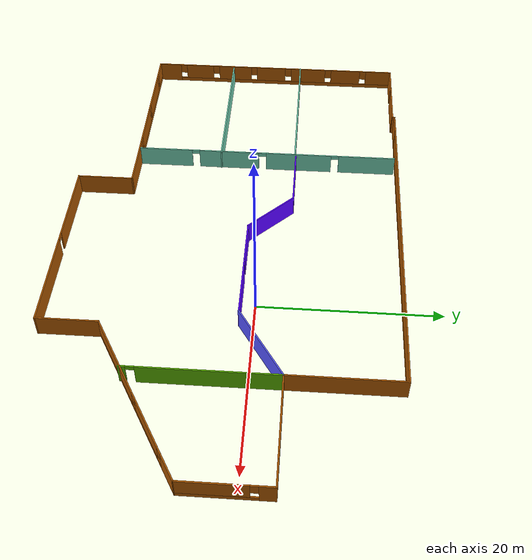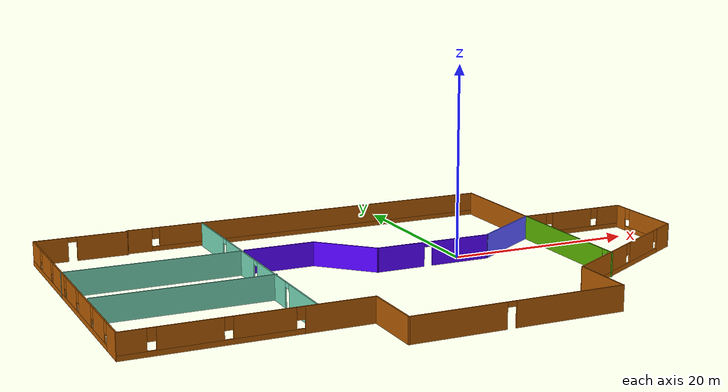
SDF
<?xml version='1.0'?>
<sdf version='1.6'>
  <model name='building'>
    <pose frame=''>-8.91477 -3.25787 0 0 -0 0</pose>
    <link name='Wall_0'>
      <pose frame=''>-1.08371 18.8526 0 0 -0 0</pose>
      <visual name='Wall_0_Visual_0'>
        <pose frame=''>-19.029 0 1.25 0 -0 0</pose>
        <geometry>
          <box>
            <size>2.69209 0.15 2.5</size>
          </box>
        </geometry>
        <material>
          <script>
            <uri>file://media/materials/scripts/gazebo.material</uri>
            <name>Gazebo/Grey</name>
          </script>
          <ambient>0.666667 0.333333 0 1</ambient>
        </material>
        <meta>
          <layer>0</layer>
        </meta>
      </visual>
      <collision name='Wall_0_Collision_0'>
        <geometry>
          <box>
            <size>2.69209 0.15 2.5</size>
          </box>
        </geometry>
        <pose frame=''>-19.029 0 1.25 0 -0 0</pose>
      </collision>
      <visual name='Wall_0_Visual_1'>
        <pose frame=''>1.34604 0 0.25 0 -0 0</pose>
        <geometry>
          <box>
            <size>38.0579 0.15 0.5</size>
          </box>
        </geometry>
        <material>
          <script>
            <uri>file://media/materials/scripts/gazebo.material</uri>
            <name>Gazebo/Grey</name>
          </script>
          <ambient>0.666667 0.333333 0 1</ambient>
        </material>
        <meta>
          <layer>0</layer>
        </meta>
      </visual>
      <collision name='Wall_0_Collision_1'>
        <geometry>
          <box>
            <size>38.0579 0.15 0.5</size>
          </box>
        </geometry>
        <pose frame=''>1.34604 0 0.25 0 -0 0</pose>
      </collision>
      <visual name='Wall_0_Visual_2'>
        <pose frame=''>1.74604 0 1.5 0 -0 0</pose>
        <geometry>
          <box>
            <size>37.2579 0.15 2</size>
          </box>
        </geometry>
        <material>
          <script>
            <uri>file://media/materials/scripts/gazebo.material</uri>
            <name>Gazebo/Grey</name>
          </script>
          <ambient>0.666667 0.333333 0 1</ambient>
        </material>
        <meta>
          <layer>0</layer>
        </meta>
      </visual>
      <collision name='Wall_0_Collision_2'>
        <geometry>
          <box>
            <size>37.2579 0.15 2</size>
          </box>
        </geometry>
        <pose frame=''>1.74604 0 1.5 0 -0 0</pose>
      </collision>
      <visual name='Wall_0_Visual_3'>
        <pose frame=''>-17.2829 0 1.9 0 -0 0</pose>
        <geometry>
          <box>
            <size>0.8 0.15 1.2</size>
          </box>
        </geometry>
        <material>
          <script>
            <uri>file://media/materials/scripts/gazebo.material</uri>
            <name>Gazebo/Grey</name>
          </script>
          <ambient>0.666667 0.333333 0 1</ambient>
        </material>
        <meta>
          <layer>0</layer>
        </meta>
      </visual>
      <collision name='Wall_0_Collision_3'>
        <geometry>
          <box>
            <size>0.8 0.15 1.2</size>
          </box>
        </geometry>
        <pose frame=''>-17.2829 0 1.9 0 -0 0</pose>
      </collision>
    </link>
    <link name='Wall_1'>
      <collision name='Wall_1_Collision'>
        <geometry>
          <box>
            <size>12.25 0.15 2.5</size>
          </box>
        </geometry>
        <pose frame=''>0 0 1.25 0 -0 0</pose>
      </collision>
      <visual name='Wall_1_Visual'>
        <pose frame=''>0 0 1.25 0 -0 0</pose>
        <geometry>
          <box>
            <size>12.25 0.15 2.5</size>
          </box>
        </geometry>
        <material>
          <script>
            <uri>file://media/materials/scripts/gazebo.material</uri>
            <name>Gazebo/Grey</name>
          </script>
          <ambient>0.666667 0.333333 0 1</ambient>
        </material>
        <meta>
          <layer>0</layer>
        </meta>
      </visual>
      <pose frame=''>19.2163 12.8026 0 0 0 -1.5708</pose>
    </link>
    <link name='Wall_12'>
      <pose frame=''>-26.2743 18.5776 0 0 -0 0</pose>
      <visual name='Wall_12_Visual_0'>
        <pose frame=''>-3.10766 0 1.25 0 -0 0</pose>
        <geometry>
          <box>
            <size>3.53467 0.15 2.5</size>
          </box>
        </geometry>
        <material>
          <script>
            <uri>file://media/materials/scripts/gazebo.material</uri>
            <name>Gazebo/Grey</name>
          </script>
          <ambient>0.666667 0.333333 0 1</ambient>
        </material>
        <meta>
          <layer>0</layer>
        </meta>
      </visual>
      <collision name='Wall_12_Collision_0'>
        <geometry>
          <box>
            <size>3.53467 0.15 2.5</size>
          </box>
        </geometry>
        <pose frame=''>-3.10766 0 1.25 0 -0 0</pose>
      </collision>
      <visual name='Wall_12_Visual_1'>
        <pose frame=''>2.21734 0 1.25 0 -0 0</pose>
        <geometry>
          <box>
            <size>5.31533 0.15 2.5</size>
          </box>
        </geometry>
        <material>
          <script>
            <uri>file://media/materials/scripts/gazebo.material</uri>
            <name>Gazebo/Grey</name>
          </script>
          <ambient>0.666667 0.333333 0 1</ambient>
        </material>
        <meta>
          <layer>0</layer>
        </meta>
      </visual>
      <collision name='Wall_12_Collision_1'>
        <geometry>
          <box>
            <size>5.31533 0.15 2.5</size>
          </box>
        </geometry>
        <pose frame=''>2.21734 0 1.25 0 -0 0</pose>
      </collision>
      <visual name='Wall_12_Visual_2'>
        <pose frame=''>-0.890327 0 2.25 0 -0 0</pose>
        <geometry>
          <box>
            <size>0.9 0.15 0.5</size>
          </box>
        </geometry>
        <material>
          <script>
            <uri>file://media/materials/scripts/gazebo.material</uri>
            <name>Gazebo/Grey</name>
          </script>
          <ambient>0.666667 0.333333 0 1</ambient>
        </material>
        <meta>
          <layer>0</layer>
        </meta>
      </visual>
      <collision name='Wall_12_Collision_2'>
        <geometry>
          <box>
            <size>0.9 0.15 0.5</size>
          </box>
        </geometry>
        <pose frame=''>-0.890327 0 2.25 0 -0 0</pose>
      </collision>
    </link>
    <link name='Wall_13'>
      <collision name='Wall_13_Collision'>
        <geometry>
          <box>
            <size>0.439541 0.15 2.5</size>
          </box>
        </geometry>
        <pose frame=''>0 0 1.25 0 -0 0</pose>
      </collision>
      <visual name='Wall_13_Visual'>
        <pose frame=''>0 0 1.25 0 -0 0</pose>
        <geometry>
          <box>
            <size>0.439541 0.15 2.5</size>
          </box>
        </geometry>
        <material>
          <script>
            <uri>file://media/materials/scripts/gazebo.material</uri>
            <name>Gazebo/Grey</name>
          </script>
          <ambient>0.666667 0.333333 0 1</ambient>
        </material>
        <meta>
          <layer>0</layer>
        </meta>
      </visual>
      <pose frame=''>-21.429 18.7151 0 0 -0 1.25253</pose>
    </link>
    <link name='Wall_15'>
      <pose frame=''>-13.3235 3.08844 0 0 0 -1.5708</pose>
      <visual name='Wall_15_Visual_0'>
        <pose frame=''>-12.1041 0 1.25 0 -0 0</pose>
        <geometry>
          <box>
            <size>6.79177 0.15 2.5</size>
          </box>
        </geometry>
        <material>
          <script>
            <uri>file://media/materials/scripts/gazebo.material</uri>
            <name>Gazebo/Grey</name>
          </script>
          <ambient>0.435294 0.796078 0.67451 1</ambient>
        </material>
        <meta>
          <layer>0</layer>
        </meta>
      </visual>
      <collision name='Wall_15_Collision_0'>
        <geometry>
          <box>
            <size>6.79177 0.15 2.5</size>
          </box>
        </geometry>
        <pose frame=''>-12.1041 0 1.25 0 -0 0</pose>
      </collision>
      <visual name='Wall_15_Visual_1'>
        <pose frame=''>-3.85922 0 1.25 0 -0 0</pose>
        <geometry>
          <box>
            <size>7.89802 0.15 2.5</size>
          </box>
        </geometry>
        <material>
          <script>
            <uri>file://media/materials/scripts/gazebo.material</uri>
            <name>Gazebo/Grey</name>
          </script>
          <ambient>0.435294 0.796078 0.67451 1</ambient>
        </material>
        <meta>
          <layer>0</layer>
        </meta>
      </visual>
      <collision name='Wall_15_Collision_1'>
        <geometry>
          <box>
            <size>7.89802 0.15 2.5</size>
          </box>
        </geometry>
        <pose frame=''>-3.85922 0 1.25 0 -0 0</pose>
      </collision>
      <visual name='Wall_15_Visual_2'>
        <pose frame=''>4.60962 0 1.25 0 -0 0</pose>
        <geometry>
          <box>
            <size>7.23966 0.15 2.5</size>
          </box>
        </geometry>
        <material>
          <script>
            <uri>file://media/materials/scripts/gazebo.material</uri>
            <name>Gazebo/Grey</name>
          </script>
          <ambient>0.435294 0.796078 0.67451 1</ambient>
        </material>
        <meta>
          <layer>0</layer>
        </meta>
      </visual>
      <collision name='Wall_15_Collision_2'>
        <geometry>
          <box>
            <size>7.23966 0.15 2.5</size>
          </box>
        </geometry>
        <pose frame=''>4.60962 0 1.25 0 -0 0</pose>
      </collision>
      <visual name='Wall_15_Visual_3'>
        <pose frame=''>12.3147 0 1.25 0 -0 0</pose>
        <geometry>
          <box>
            <size>6.37055 0.15 2.5</size>
          </box>
        </geometry>
        <material>
          <script>
            <uri>file://media/materials/scripts/gazebo.material</uri>
            <name>Gazebo/Grey</name>
          </script>
          <ambient>0.435294 0.796078 0.67451 1</ambient>
        </material>
        <meta>
          <layer>0</layer>
        </meta>
      </visual>
      <collision name='Wall_15_Collision_3'>
        <geometry>
          <box>
            <size>6.37055 0.15 2.5</size>
          </box>
        </geometry>
        <pose frame=''>12.3147 0 1.25 0 -0 0</pose>
      </collision>
      <visual name='Wall_15_Visual_4'>
        <pose frame=''>-8.25823 0 2.25 0 -0 0</pose>
        <geometry>
          <box>
            <size>0.9 0.15 0.5</size>
          </box>
        </geometry>
        <material>
          <script>
            <uri>file://media/materials/scripts/gazebo.material</uri>
            <name>Gazebo/Grey</name>
          </script>
          <ambient>0.435294 0.796078 0.67451 1</ambient>
        </material>
        <meta>
          <layer>0</layer>
        </meta>
      </visual>
      <collision name='Wall_15_Collision_4'>
        <geometry>
          <box>
            <size>0.9 0.15 0.5</size>
          </box>
        </geometry>
        <pose frame=''>-8.25823 0 2.25 0 -0 0</pose>
      </collision>
      <visual name='Wall_15_Visual_5'>
        <pose frame=''>0.539787 0 2.25 0 -0 0</pose>
        <geometry>
          <box>
            <size>0.9 0.15 0.5</size>
          </box>
        </geometry>
        <material>
          <script>
            <uri>file://media/materials/scripts/gazebo.material</uri>
            <name>Gazebo/Grey</name>
          </script>
          <ambient>0.435294 0.796078 0.67451 1</ambient>
        </material>
        <meta>
          <layer>0</layer>
        </meta>
      </visual>
      <collision name='Wall_15_Collision_5'>
        <geometry>
          <box>
            <size>0.9 0.15 0.5</size>
          </box>
        </geometry>
        <pose frame=''>0.539787 0 2.25 0 -0 0</pose>
      </collision>
      <visual name='Wall_15_Visual_6'>
        <pose frame=''>8.67945 0 2.25 0 -0 0</pose>
        <geometry>
          <box>
            <size>0.9 0.15 0.5</size>
          </box>
        </geometry>
        <material>
          <script>
            <uri>file://media/materials/scripts/gazebo.material</uri>
            <name>Gazebo/Grey</name>
          </script>
          <ambient>0.435294 0.796078 0.67451 1</ambient>
        </material>
        <meta>
          <layer>0</layer>
        </meta>
      </visual>
      <collision name='Wall_15_Collision_6'>
        <geometry>
          <box>
            <size>0.9 0.15 0.5</size>
          </box>
        </geometry>
        <pose frame=''>8.67945 0 2.25 0 -0 0</pose>
      </collision>
    </link>
    <link name='Wall_19'>
      <collision name='Wall_19_Collision'>
        <geometry>
          <box>
            <size>17.75 0.15 2.5</size>
          </box>
        </geometry>
        <pose frame=''>0 0 1.25 0 -0 0</pose>
      </collision>
      <visual name='Wall_19_Visual'>
        <pose frame=''>0 0 1.25 0 -0 0</pose>
        <geometry>
          <box>
            <size>17.75 0.15 2.5</size>
          </box>
        </geometry>
        <material>
          <script>
            <uri>file://media/materials/scripts/gazebo.material</uri>
            <name>Gazebo/Grey</name>
          </script>
          <ambient>0.435294 0.796078 0.67451 1</ambient>
        </material>
        <meta>
          <layer>0</layer>
        </meta>
      </visual>
      <pose frame=''>-22.2937 6.49878 0 0 -0 0</pose>
    </link>
    <link name='Wall_2'>
      <pose frame=''>25.1413 6.75265 0 0 -0 0</pose>
      <visual name='Wall_2_Visual_0'>
        <pose frame=''>-4.69458 0 1.25 0 -0 0</pose>
        <geometry>
          <box>
            <size>2.61084 0.15 2.5</size>
          </box>
        </geometry>
        <material>
          <script>
            <uri>file://media/materials/scripts/gazebo.material</uri>
            <name>Gazebo/Grey</name>
          </script>
          <ambient>0.666667 0.333333 0 1</ambient>
        </material>
        <meta>
          <layer>0</layer>
        </meta>
      </visual>
      <collision name='Wall_2_Collision_0'>
        <geometry>
          <box>
            <size>2.61084 0.15 2.5</size>
          </box>
        </geometry>
        <pose frame=''>-4.69458 0 1.25 0 -0 0</pose>
      </collision>
      <visual name='Wall_2_Visual_1'>
        <pose frame=''>1.30542 0 0.25 0 -0 0</pose>
        <geometry>
          <box>
            <size>9.38916 0.15 0.5</size>
          </box>
        </geometry>
        <material>
          <script>
            <uri>file://media/materials/scripts/gazebo.material</uri>
            <name>Gazebo/Grey</name>
          </script>
          <ambient>0.666667 0.333333 0 1</ambient>
        </material>
        <meta>
          <layer>0</layer>
        </meta>
      </visual>
      <collision name='Wall_2_Collision_1'>
        <geometry>
          <box>
            <size>9.38916 0.15 0.5</size>
          </box>
        </geometry>
        <pose frame=''>1.30542 0 0.25 0 -0 0</pose>
      </collision>
      <visual name='Wall_2_Visual_2'>
        <pose frame=''>-0.116338 0 1.5 0 -0 0</pose>
        <geometry>
          <box>
            <size>4.94564 0.15 2</size>
          </box>
        </geometry>
        <material>
          <script>
            <uri>file://media/materials/scripts/gazebo.material</uri>
            <name>Gazebo/Grey</name>
          </script>
          <ambient>0.666667 0.333333 0 1</ambient>
        </material>
        <meta>
          <layer>0</layer>
        </meta>
      </visual>
      <collision name='Wall_2_Collision_2'>
        <geometry>
          <box>
            <size>4.94564 0.15 2</size>
          </box>
        </geometry>
        <pose frame=''>-0.116338 0 1.5 0 -0 0</pose>
      </collision>
      <visual name='Wall_2_Visual_3'>
        <pose frame=''>4.57824 0 1.5 0 -0 0</pose>
        <geometry>
          <box>
            <size>2.84352 0.15 2</size>
          </box>
        </geometry>
        <material>
          <script>
            <uri>file://media/materials/scripts/gazebo.material</uri>
            <name>Gazebo/Grey</name>
          </script>
          <ambient>0.666667 0.333333 0 1</ambient>
        </material>
        <meta>
          <layer>0</layer>
        </meta>
      </visual>
      <collision name='Wall_2_Collision_3'>
        <geometry>
          <box>
            <size>2.84352 0.15 2</size>
          </box>
        </geometry>
        <pose frame=''>4.57824 0 1.5 0 -0 0</pose>
      </collision>
      <visual name='Wall_2_Visual_4'>
        <pose frame=''>-2.98916 0 1.9 0 -0 0</pose>
        <geometry>
          <box>
            <size>0.8 0.15 1.2</size>
          </box>
        </geometry>
        <material>
          <script>
            <uri>file://media/materials/scripts/gazebo.material</uri>
            <name>Gazebo/Grey</name>
          </script>
          <ambient>0.666667 0.333333 0 1</ambient>
        </material>
        <meta>
          <layer>0</layer>
        </meta>
      </visual>
      <collision name='Wall_2_Collision_4'>
        <geometry>
          <box>
            <size>0.8 0.15 1.2</size>
          </box>
        </geometry>
        <pose frame=''>-2.98916 0 1.9 0 -0 0</pose>
      </collision>
      <visual name='Wall_2_Visual_5'>
        <pose frame=''>2.75648 0 1.9 0 -0 0</pose>
        <geometry>
          <box>
            <size>0.8 0.15 1.2</size>
          </box>
        </geometry>
        <material>
          <script>
            <uri>file://media/materials/scripts/gazebo.material</uri>
            <name>Gazebo/Grey</name>
          </script>
          <ambient>0.666667 0.333333 0 1</ambient>
        </material>
        <meta>
          <layer>0</layer>
        </meta>
      </visual>
      <collision name='Wall_2_Collision_5'>
        <geometry>
          <box>
            <size>0.8 0.15 1.2</size>
          </box>
        </geometry>
        <pose frame=''>2.75648 0 1.9 0 -0 0</pose>
      </collision>
    </link>
    <link name='Wall_21'>
      <collision name='Wall_21_Collision'>
        <geometry>
          <box>
            <size>17.75 0.15 2.5</size>
          </box>
        </geometry>
        <pose frame=''>0 0 1.25 0 -0 0</pose>
      </collision>
      <visual name='Wall_21_Visual'>
        <pose frame=''>0 0 1.25 0 -0 0</pose>
        <geometry>
          <box>
            <size>17.75 0.15 2.5</size>
          </box>
        </geometry>
        <material>
          <script>
            <uri>file://media/materials/scripts/gazebo.material</uri>
            <name>Gazebo/Grey</name>
          </script>
          <ambient>0.435294 0.796078 0.67451 1</ambient>
        </material>
        <meta>
          <layer>0</layer>
        </meta>
      </visual>
      <pose frame=''>-21.9945 -2.47879 0 0 -0 0</pose>
    </link>
    <link name='Wall_23'>
      <collision name='Wall_23_Collision'>
        <geometry>
          <box>
            <size>7.5 0.15 2.5</size>
          </box>
        </geometry>
        <pose frame=''>0 0 1.25 0 -0 0</pose>
      </collision>
      <visual name='Wall_23_Visual'>
        <pose frame=''>0 0 1.25 0 -0 0</pose>
        <geometry>
          <box>
            <size>7.5 0.15 2.5</size>
          </box>
        </geometry>
        <material>
          <script>
            <uri>file://media/materials/scripts/gazebo.material</uri>
            <name>Gazebo/Grey</name>
          </script>
          <ambient>0.333333 0 1 1</ambient>
        </material>
        <meta>
          <layer>0</layer>
        </meta>
      </visual>
      <pose frame=''>-9.3065 6.62016 0 0 -0 0</pose>
    </link>
    <link name='Wall_24'>
      <collision name='Wall_24_Collision'>
        <geometry>
          <box>
            <size>7 0.15 2.5</size>
          </box>
        </geometry>
        <pose frame=''>0 0 1.25 0 -0 0</pose>
      </collision>
      <visual name='Wall_24_Visual'>
        <pose frame=''>0 0 1.25 0 -0 0</pose>
        <geometry>
          <box>
            <size>7 0.15 2.5</size>
          </box>
        </geometry>
        <material>
          <script>
            <uri>file://media/materials/scripts/gazebo.material</uri>
            <name>Gazebo/Grey</name>
          </script>
          <ambient>0.333333 0 1 1</ambient>
        </material>
        <meta>
          <layer>0</layer>
        </meta>
      </visual>
      <pose frame=''>-3.20967 4.19832 0 0 0 -0.785398</pose>
    </link>
    <link name='Wall_25'>
      <pose frame=''>5.38718 1.77648 0 0 -0 0</pose>
      <visual name='Wall_25_Visual_0'>
        <pose frame=''>-3.64664 0 1.25 0 -0 0</pose>
        <geometry>
          <box>
            <size>5.20672 0.15 2.5</size>
          </box>
        </geometry>
        <material>
          <script>
            <uri>file://media/materials/scripts/gazebo.material</uri>
            <name>Gazebo/Grey</name>
          </script>
          <ambient>0.333333 0 1 1</ambient>
        </material>
        <meta>
          <layer>0</layer>
        </meta>
      </visual>
      <collision name='Wall_25_Collision_0'>
        <geometry>
          <box>
            <size>5.20672 0.15 2.5</size>
          </box>
        </geometry>
        <pose frame=''>-3.64664 0 1.25 0 -0 0</pose>
      </collision>
      <visual name='Wall_25_Visual_1'>
        <pose frame=''>3.05336 0 1.25 0 -0 0</pose>
        <geometry>
          <box>
            <size>6.39328 0.15 2.5</size>
          </box>
        </geometry>
        <material>
          <script>
            <uri>file://media/materials/scripts/gazebo.material</uri>
            <name>Gazebo/Grey</name>
          </script>
          <ambient>0.333333 0 1 1</ambient>
        </material>
        <meta>
          <layer>0</layer>
        </meta>
      </visual>
      <collision name='Wall_25_Collision_1'>
        <geometry>
          <box>
            <size>6.39328 0.15 2.5</size>
          </box>
        </geometry>
        <pose frame=''>3.05336 0 1.25 0 -0 0</pose>
      </collision>
      <visual name='Wall_25_Visual_2'>
        <pose frame=''>-0.59328 0 2.25 0 -0 0</pose>
        <geometry>
          <box>
            <size>0.9 0.15 0.5</size>
          </box>
        </geometry>
        <material>
          <script>
            <uri>file://media/materials/scripts/gazebo.material</uri>
            <name>Gazebo/Grey</name>
          </script>
          <ambient>0.333333 0 1 1</ambient>
        </material>
        <meta>
          <layer>0</layer>
        </meta>
      </visual>
      <collision name='Wall_25_Collision_2'>
        <geometry>
          <box>
            <size>0.9 0.15 0.5</size>
          </box>
        </geometry>
        <pose frame=''>-0.59328 0 2.25 0 -0 0</pose>
      </collision>
    </link>
    <link name='Wall_26'>
      <collision name='Wall_26_Collision'>
        <geometry>
          <box>
            <size>9.27949 0.15 2.5</size>
          </box>
        </geometry>
        <pose frame=''>0 0 1.25 0 -0 0</pose>
      </collision>
      <visual name='Wall_26_Visual'>
        <pose frame=''>0 0 1.25 0 -0 0</pose>
        <geometry>
          <box>
            <size>9.27949 0.15 2.5</size>
          </box>
        </geometry>
        <material>
          <script>
            <uri>file://media/materials/scripts/gazebo.material</uri>
            <name>Gazebo/Grey</name>
          </script>
          <ambient>0.333333 0.333333 1 1</ambient>
        </material>
        <meta>
          <layer>0</layer>
        </meta>
      </visual>
      <pose frame=''>15.3892 4.26457 0 0 -0 0.576467</pose>
    </link>
    <link name='Wall_28'>
      <pose frame=''>19.2163 -1.29735 0 0 0 -1.5708</pose>
      <visual name='Wall_28_Visual_0'>
        <pose frame=''>-0.825937 0 1.25 0 -0 0</pose>
        <geometry>
          <box>
            <size>14.5981 0.15 2.5</size>
          </box>
        </geometry>
        <material>
          <script>
            <uri>file://media/materials/scripts/gazebo.material</uri>
            <name>Gazebo/Grey</name>
          </script>
          <ambient>0.333333 0.666667 0 1</ambient>
        </material>
        <meta>
          <layer>0</layer>
        </meta>
      </visual>
      <collision name='Wall_28_Collision_0'>
        <geometry>
          <box>
            <size>14.5981 0.15 2.5</size>
          </box>
        </geometry>
        <pose frame=''>-0.825937 0 1.25 0 -0 0</pose>
      </collision>
      <visual name='Wall_28_Visual_1'>
        <pose frame=''>7.74906 0 1.25 0 -0 0</pose>
        <geometry>
          <box>
            <size>0.751873 0.15 2.5</size>
          </box>
        </geometry>
        <material>
          <script>
            <uri>file://media/materials/scripts/gazebo.material</uri>
            <name>Gazebo/Grey</name>
          </script>
          <ambient>0.333333 0.666667 0 1</ambient>
        </material>
        <meta>
          <layer>0</layer>
        </meta>
      </visual>
      <collision name='Wall_28_Collision_1'>
        <geometry>
          <box>
            <size>0.751873 0.15 2.5</size>
          </box>
        </geometry>
        <pose frame=''>7.74906 0 1.25 0 -0 0</pose>
      </collision>
      <visual name='Wall_28_Visual_2'>
        <pose frame=''>6.92313 0 2.25 0 -0 0</pose>
        <geometry>
          <box>
            <size>0.9 0.15 0.5</size>
          </box>
        </geometry>
        <material>
          <script>
            <uri>file://media/materials/scripts/gazebo.material</uri>
            <name>Gazebo/Grey</name>
          </script>
          <ambient>0.333333 0.666667 0 1</ambient>
        </material>
        <meta>
          <layer>0</layer>
        </meta>
      </visual>
      <collision name='Wall_28_Collision_2'>
        <geometry>
          <box>
            <size>0.9 0.15 0.5</size>
          </box>
        </geometry>
        <pose frame=''>6.92313 0 2.25 0 -0 0</pose>
      </collision>
    </link>
    <link name='Wall_3'>
      <pose frame=''>31.0663 2.20265 0 0 0 -1.5708</pose>
      <visual name='Wall_3_Visual_0'>
        <pose frame=''>-3.81376 0 1.25 0 -0 0</pose>
        <geometry>
          <box>
            <size>1.62248 0.15 2.5</size>
          </box>
        </geometry>
        <material>
          <script>
            <uri>file://media/materials/scripts/gazebo.material</uri>
            <name>Gazebo/Grey</name>
          </script>
          <ambient>0.666667 0.333333 0 1</ambient>
        </material>
        <meta>
          <layer>0</layer>
        </meta>
      </visual>
      <collision name='Wall_3_Collision_0'>
        <geometry>
          <box>
            <size>1.62248 0.15 2.5</size>
          </box>
        </geometry>
        <pose frame=''>-3.81376 0 1.25 0 -0 0</pose>
      </collision>
      <visual name='Wall_3_Visual_1'>
        <pose frame=''>0.811242 0 0.25 0 -0 0</pose>
        <geometry>
          <box>
            <size>7.62752 0.15 0.5</size>
          </box>
        </geometry>
        <material>
          <script>
            <uri>file://media/materials/scripts/gazebo.material</uri>
            <name>Gazebo/Grey</name>
          </script>
          <ambient>0.666667 0.333333 0 1</ambient>
        </material>
        <meta>
          <layer>0</layer>
        </meta>
      </visual>
      <collision name='Wall_3_Collision_1'>
        <geometry>
          <box>
            <size>7.62752 0.15 0.5</size>
          </box>
        </geometry>
        <pose frame=''>0.811242 0 0.25 0 -0 0</pose>
      </collision>
      <visual name='Wall_3_Visual_2'>
        <pose frame=''>1.21124 0 1.5 0 -0 0</pose>
        <geometry>
          <box>
            <size>6.82752 0.15 2</size>
          </box>
        </geometry>
        <material>
          <script>
            <uri>file://media/materials/scripts/gazebo.material</uri>
            <name>Gazebo/Grey</name>
          </script>
          <ambient>0.666667 0.333333 0 1</ambient>
        </material>
        <meta>
          <layer>0</layer>
        </meta>
      </visual>
      <collision name='Wall_3_Collision_2'>
        <geometry>
          <box>
            <size>6.82752 0.15 2</size>
          </box>
        </geometry>
        <pose frame=''>1.21124 0 1.5 0 -0 0</pose>
      </collision>
      <visual name='Wall_3_Visual_3'>
        <pose frame=''>-2.60252 0 1.9 0 -0 0</pose>
        <geometry>
          <box>
            <size>0.8 0.15 1.2</size>
          </box>
        </geometry>
        <material>
          <script>
            <uri>file://media/materials/scripts/gazebo.material</uri>
            <name>Gazebo/Grey</name>
          </script>
          <ambient>0.666667 0.333333 0 1</ambient>
        </material>
        <meta>
          <layer>0</layer>
        </meta>
      </visual>
      <collision name='Wall_3_Collision_3'>
        <geometry>
          <box>
            <size>0.8 0.15 1.2</size>
          </box>
        </geometry>
        <pose frame=''>-2.60252 0 1.9 0 -0 0</pose>
      </collision>
    </link>
    <link name='Wall_4'>
      <pose frame=''>22.471 -7.30985 0 0 0 -2.61799</pose>
      <visual name='Wall_4_Visual_0'>
        <pose frame=''>-8.49373 0 1.25 0 -0 0</pose>
        <geometry>
          <box>
            <size>3.01253 0.15 2.5</size>
          </box>
        </geometry>
        <material>
          <script>
            <uri>file://media/materials/scripts/gazebo.material</uri>
            <name>Gazebo/Grey</name>
          </script>
          <ambient>0.666667 0.333333 0 1</ambient>
        </material>
        <meta>
          <layer>0</layer>
        </meta>
      </visual>
      <collision name='Wall_4_Collision_0'>
        <geometry>
          <box>
            <size>3.01253 0.15 2.5</size>
          </box>
        </geometry>
        <pose frame=''>-8.49373 0 1.25 0 -0 0</pose>
      </collision>
      <visual name='Wall_4_Visual_1'>
        <pose frame=''>1.50626 0 0.25 0 -0 0</pose>
        <geometry>
          <box>
            <size>16.9875 0.15 0.5</size>
          </box>
        </geometry>
        <material>
          <script>
            <uri>file://media/materials/scripts/gazebo.material</uri>
            <name>Gazebo/Grey</name>
          </script>
          <ambient>0.666667 0.333333 0 1</ambient>
        </material>
        <meta>
          <layer>0</layer>
        </meta>
      </visual>
      <collision name='Wall_4_Collision_1'>
        <geometry>
          <box>
            <size>16.9875 0.15 0.5</size>
          </box>
        </geometry>
        <pose frame=''>1.50626 0 0.25 0 -0 0</pose>
      </collision>
      <visual name='Wall_4_Visual_2'>
        <pose frame=''>-3.34338 0 1.5 0 -0 0</pose>
        <geometry>
          <box>
            <size>5.68817 0.15 2</size>
          </box>
        </geometry>
        <material>
          <script>
            <uri>file://media/materials/scripts/gazebo.material</uri>
            <name>Gazebo/Grey</name>
          </script>
          <ambient>0.666667 0.333333 0 1</ambient>
        </material>
        <meta>
          <layer>0</layer>
        </meta>
      </visual>
      <collision name='Wall_4_Collision_2'>
        <geometry>
          <box>
            <size>5.68817 0.15 2</size>
          </box>
        </geometry>
        <pose frame=''>-3.34338 0 1.5 0 -0 0</pose>
      </collision>
      <visual name='Wall_4_Visual_3'>
        <pose frame=''>5.15035 0 1.5 0 -0 0</pose>
        <geometry>
          <box>
            <size>9.6993 0.15 2</size>
          </box>
        </geometry>
        <material>
          <script>
            <uri>file://media/materials/scripts/gazebo.material</uri>
            <name>Gazebo/Grey</name>
          </script>
          <ambient>0.666667 0.333333 0 1</ambient>
        </material>
        <meta>
          <layer>0</layer>
        </meta>
      </visual>
      <collision name='Wall_4_Collision_3'>
        <geometry>
          <box>
            <size>9.6993 0.15 2</size>
          </box>
        </geometry>
        <pose frame=''>5.15035 0 1.5 0 -0 0</pose>
      </collision>
      <visual name='Wall_4_Visual_4'>
        <pose frame=''>-6.58747 0 1.9 0 -0 0</pose>
        <geometry>
          <box>
            <size>0.8 0.15 1.2</size>
          </box>
        </geometry>
        <material>
          <script>
            <uri>file://media/materials/scripts/gazebo.material</uri>
            <name>Gazebo/Grey</name>
          </script>
          <ambient>0.666667 0.333333 0 1</ambient>
        </material>
        <meta>
          <layer>0</layer>
        </meta>
      </visual>
      <collision name='Wall_4_Collision_4'>
        <geometry>
          <box>
            <size>0.8 0.15 1.2</size>
          </box>
        </geometry>
        <pose frame=''>-6.58747 0 1.9 0 -0 0</pose>
      </collision>
      <visual name='Wall_4_Visual_5'>
        <pose frame=''>-0.099298 0 1.9 0 -0 0</pose>
        <geometry>
          <box>
            <size>0.8 0.15 1.2</size>
          </box>
        </geometry>
        <material>
          <script>
            <uri>file://media/materials/scripts/gazebo.material</uri>
            <name>Gazebo/Grey</name>
          </script>
          <ambient>0.666667 0.333333 0 1</ambient>
        </material>
        <meta>
          <layer>0</layer>
        </meta>
      </visual>
      <collision name='Wall_4_Collision_5'>
        <geometry>
          <box>
            <size>0.8 0.15 1.2</size>
          </box>
        </geometry>
        <pose frame=''>-0.099298 0 1.9 0 -0 0</pose>
      </collision>
    </link>
    <link name='Wall_5'>
      <collision name='Wall_5_Collision'>
        <geometry>
          <box>
            <size>6.75 0.15 2.5</size>
          </box>
        </geometry>
        <pose frame=''>0 0 1.25 0 -0 0</pose>
      </collision>
      <visual name='Wall_5_Visual'>
        <pose frame=''>0 0 1.25 0 -0 0</pose>
        <geometry>
          <box>
            <size>6.75 0.15 2.5</size>
          </box>
        </geometry>
        <material>
          <script>
            <uri>file://media/materials/scripts/gazebo.material</uri>
            <name>Gazebo/Grey</name>
          </script>
          <ambient>0.666667 0.333333 0 1</ambient>
        </material>
        <meta>
          <layer>0</layer>
        </meta>
      </visual>
      <pose frame=''>13.8757 -15.5724 0 0 0 -1.5708</pose>
    </link>
    <link name='Wall_6'>
      <pose frame=''>3.07568 -18.8724 0 0 -0 3.14159</pose>
      <visual name='Wall_6_Visual_0'>
        <pose frame=''>-5.26507 0 1.25 0 -0 0</pose>
        <geometry>
          <box>
            <size>11.2199 0.15 2.5</size>
          </box>
        </geometry>
        <material>
          <script>
            <uri>file://media/materials/scripts/gazebo.material</uri>
            <name>Gazebo/Grey</name>
          </script>
          <ambient>0.666667 0.333333 0 1</ambient>
        </material>
        <meta>
          <layer>0</layer>
        </meta>
      </visual>
      <collision name='Wall_6_Collision_0'>
        <geometry>
          <box>
            <size>11.2199 0.15 2.5</size>
          </box>
        </geometry>
        <pose frame=''>-5.26507 0 1.25 0 -0 0</pose>
      </collision>
      <visual name='Wall_6_Visual_1'>
        <pose frame=''>6.05993 0 1.25 0 -0 0</pose>
        <geometry>
          <box>
            <size>9.63014 0.15 2.5</size>
          </box>
        </geometry>
        <material>
          <script>
            <uri>file://media/materials/scripts/gazebo.material</uri>
            <name>Gazebo/Grey</name>
          </script>
          <ambient>0.666667 0.333333 0 1</ambient>
        </material>
        <meta>
          <layer>0</layer>
        </meta>
      </visual>
      <collision name='Wall_6_Collision_1'>
        <geometry>
          <box>
            <size>9.63014 0.15 2.5</size>
          </box>
        </geometry>
        <pose frame=''>6.05993 0 1.25 0 -0 0</pose>
      </collision>
      <visual name='Wall_6_Visual_2'>
        <pose frame=''>0.794864 0 2.25 0 -0 0</pose>
        <geometry>
          <box>
            <size>0.9 0.15 0.5</size>
          </box>
        </geometry>
        <material>
          <script>
            <uri>file://media/materials/scripts/gazebo.material</uri>
            <name>Gazebo/Grey</name>
          </script>
          <ambient>0.666667 0.333333 0 1</ambient>
        </material>
        <meta>
          <layer>0</layer>
        </meta>
      </visual>
      <collision name='Wall_6_Collision_2'>
        <geometry>
          <box>
            <size>0.9 0.15 0.5</size>
          </box>
        </geometry>
        <pose frame=''>0.794864 0 2.25 0 -0 0</pose>
      </collision>
    </link>
    <link name='Wall_7'>
      <collision name='Wall_7_Collision'>
        <geometry>
          <box>
            <size>6.5 0.15 2.5</size>
          </box>
        </geometry>
        <pose frame=''>0 0 1.25 0 -0 0</pose>
      </collision>
      <visual name='Wall_7_Visual'>
        <pose frame=''>0 0 1.25 0 -0 0</pose>
        <geometry>
          <box>
            <size>6.5 0.15 2.5</size>
          </box>
        </geometry>
        <material>
          <script>
            <uri>file://media/materials/scripts/gazebo.material</uri>
            <name>Gazebo/Grey</name>
          </script>
          <ambient>0.666667 0.333333 0 1</ambient>
        </material>
        <meta>
          <layer>0</layer>
        </meta>
      </visual>
      <pose frame=''>-7.72432 -15.6974 0 0 -0 1.5708</pose>
    </link>
    <link name='Wall_8'>
      <pose frame=''>-19.3993 -12.5224 0 0 -0 3.14159</pose>
      <visual name='Wall_8_Visual_0'>
        <pose frame=''>-8.32701 0 1.25 0 -0 0</pose>
        <geometry>
          <box>
            <size>6.84598 0.15 2.5</size>
          </box>
        </geometry>
        <material>
          <script>
            <uri>file://media/materials/scripts/gazebo.material</uri>
            <name>Gazebo/Grey</name>
          </script>
          <ambient>0.666667 0.333333 0 1</ambient>
        </material>
        <meta>
          <layer>0</layer>
        </meta>
      </visual>
      <collision name='Wall_8_Collision_0'>
        <geometry>
          <box>
            <size>6.84598 0.15 2.5</size>
          </box>
        </geometry>
        <pose frame=''>-8.32701 0 1.25 0 -0 0</pose>
      </collision>
      <visual name='Wall_8_Visual_1'>
        <pose frame=''>3.42299 0 0.25 0 -0 0</pose>
        <geometry>
          <box>
            <size>16.654 0.15 0.5</size>
          </box>
        </geometry>
        <material>
          <script>
            <uri>file://media/materials/scripts/gazebo.material</uri>
            <name>Gazebo/Grey</name>
          </script>
          <ambient>0.666667 0.333333 0 1</ambient>
        </material>
        <meta>
          <layer>0</layer>
        </meta>
      </visual>
      <collision name='Wall_8_Collision_1'>
        <geometry>
          <box>
            <size>16.654 0.15 0.5</size>
          </box>
        </geometry>
        <pose frame=''>3.42299 0 0.25 0 -0 0</pose>
      </collision>
      <visual name='Wall_8_Visual_2'>
        <pose frame=''>-1.24217 0 1.5 0 -0 0</pose>
        <geometry>
          <box>
            <size>5.7237 0.15 2</size>
          </box>
        </geometry>
        <material>
          <script>
            <uri>file://media/materials/scripts/gazebo.material</uri>
            <name>Gazebo/Grey</name>
          </script>
          <ambient>0.666667 0.333333 0 1</ambient>
        </material>
        <meta>
          <layer>0</layer>
        </meta>
      </visual>
      <collision name='Wall_8_Collision_2'>
        <geometry>
          <box>
            <size>5.7237 0.15 2</size>
          </box>
        </geometry>
        <pose frame=''>-1.24217 0 1.5 0 -0 0</pose>
      </collision>
      <visual name='Wall_8_Visual_3'>
        <pose frame=''>5.37131 0 1.5 0 -0 0</pose>
        <geometry>
          <box>
            <size>5.90325 0.15 2</size>
          </box>
        </geometry>
        <material>
          <script>
            <uri>file://media/materials/scripts/gazebo.material</uri>
            <name>Gazebo/Grey</name>
          </script>
          <ambient>0.666667 0.333333 0 1</ambient>
        </material>
        <meta>
          <layer>0</layer>
        </meta>
      </visual>
      <collision name='Wall_8_Collision_3'>
        <geometry>
          <box>
            <size>5.90325 0.15 2</size>
          </box>
        </geometry>
        <pose frame=''>5.37131 0 1.5 0 -0 0</pose>
      </collision>
      <visual name='Wall_8_Visual_4'>
        <pose frame=''>10.4365 0 1.5 0 -0 0</pose>
        <geometry>
          <box>
            <size>2.62707 0.15 2</size>
          </box>
        </geometry>
        <material>
          <script>
            <uri>file://media/materials/scripts/gazebo.material</uri>
            <name>Gazebo/Grey</name>
          </script>
          <ambient>0.666667 0.333333 0 1</ambient>
        </material>
        <meta>
          <layer>0</layer>
        </meta>
      </visual>
      <collision name='Wall_8_Collision_4'>
        <geometry>
          <box>
            <size>2.62707 0.15 2</size>
          </box>
        </geometry>
        <pose frame=''>10.4365 0 1.5 0 -0 0</pose>
      </collision>
      <visual name='Wall_8_Visual_5'>
        <pose frame=''>-4.50402 0 1.9 0 -0 0</pose>
        <geometry>
          <box>
            <size>0.8 0.15 1.2</size>
          </box>
        </geometry>
        <material>
          <script>
            <uri>file://media/materials/scripts/gazebo.material</uri>
            <name>Gazebo/Grey</name>
          </script>
          <ambient>0.666667 0.333333 0 1</ambient>
        </material>
        <meta>
          <layer>0</layer>
        </meta>
      </visual>
      <collision name='Wall_8_Collision_5'>
        <geometry>
          <box>
            <size>0.8 0.15 1.2</size>
          </box>
        </geometry>
        <pose frame=''>-4.50402 0 1.9 0 -0 0</pose>
      </collision>
      <visual name='Wall_8_Visual_6'>
        <pose frame=''>2.01968 0 1.9 0 -0 0</pose>
        <geometry>
          <box>
            <size>0.8 0.15 1.2</size>
          </box>
        </geometry>
        <material>
          <script>
            <uri>file://media/materials/scripts/gazebo.material</uri>
            <name>Gazebo/Grey</name>
          </script>
          <ambient>0.666667 0.333333 0 1</ambient>
        </material>
        <meta>
          <layer>0</layer>
        </meta>
      </visual>
      <collision name='Wall_8_Collision_6'>
        <geometry>
          <box>
            <size>0.8 0.15 1.2</size>
          </box>
        </geometry>
        <pose frame=''>2.01968 0 1.9 0 -0 0</pose>
      </collision>
      <visual name='Wall_8_Visual_7'>
        <pose frame=''>8.72293 0 1.9 0 -0 0</pose>
        <geometry>
          <box>
            <size>0.8 0.15 1.2</size>
          </box>
        </geometry>
        <material>
          <script>
            <uri>file://media/materials/scripts/gazebo.material</uri>
            <name>Gazebo/Grey</name>
          </script>
          <ambient>0.666667 0.333333 0 1</ambient>
        </material>
        <meta>
          <layer>0</layer>
        </meta>
      </visual>
      <collision name='Wall_8_Collision_7'>
        <geometry>
          <box>
            <size>0.8 0.15 1.2</size>
          </box>
        </geometry>
        <pose frame=''>8.72293 0 1.9 0 -0 0</pose>
      </collision>
    </link>
    <link name='Wall_9'>
      <pose frame=''>-31.0743 3.02765 0 0 -0 1.5708</pose>
      <visual name='Wall_9_Visual_0'>
        <pose frame=''>-14.1861 0 1.25 0 -0 0</pose>
        <geometry>
          <box>
            <size>2.87781 0.15 2.5</size>
          </box>
        </geometry>
        <material>
          <script>
            <uri>file://media/materials/scripts/gazebo.material</uri>
            <name>Gazebo/Grey</name>
          </script>
          <ambient>0.666667 0.333333 0 1</ambient>
        </material>
        <meta>
          <layer>0</layer>
        </meta>
      </visual>
      <collision name='Wall_9_Collision_0'>
        <geometry>
          <box>
            <size>2.87781 0.15 2.5</size>
          </box>
        </geometry>
        <pose frame=''>-14.1861 0 1.25 0 -0 0</pose>
      </collision>
      <visual name='Wall_9_Visual_1'>
        <pose frame=''>1.43891 0 0.25 0 -0 0</pose>
        <geometry>
          <box>
            <size>28.3722 0.15 0.5</size>
          </box>
        </geometry>
        <material>
          <script>
            <uri>file://media/materials/scripts/gazebo.material</uri>
            <name>Gazebo/Grey</name>
          </script>
          <ambient>0.666667 0.333333 0 1</ambient>
        </material>
        <meta>
          <layer>0</layer>
        </meta>
      </visual>
      <collision name='Wall_9_Collision_1'>
        <geometry>
          <box>
            <size>28.3722 0.15 0.5</size>
          </box>
        </geometry>
        <pose frame=''>1.43891 0 0.25 0 -0 0</pose>
      </collision>
      <visual name='Wall_9_Visual_2'>
        <pose frame=''>-10.1327 0 1.5 0 -0 0</pose>
        <geometry>
          <box>
            <size>3.62893 0.15 2</size>
          </box>
        </geometry>
        <material>
          <script>
            <uri>file://media/materials/scripts/gazebo.material</uri>
            <name>Gazebo/Grey</name>
          </script>
          <ambient>0.666667 0.333333 0 1</ambient>
        </material>
        <meta>
          <layer>0</layer>
        </meta>
      </visual>
      <collision name='Wall_9_Collision_2'>
        <geometry>
          <box>
            <size>3.62893 0.15 2</size>
          </box>
        </geometry>
        <pose frame=''>-10.1327 0 1.5 0 -0 0</pose>
      </collision>
      <visual name='Wall_9_Visual_3'>
        <pose frame=''>-5.34469 0 1.5 0 -0 0</pose>
        <geometry>
          <box>
            <size>4.34714 0.15 2</size>
          </box>
        </geometry>
        <material>
          <script>
            <uri>file://media/materials/scripts/gazebo.material</uri>
            <name>Gazebo/Grey</name>
          </script>
          <ambient>0.666667 0.333333 0 1</ambient>
        </material>
        <meta>
          <layer>0</layer>
        </meta>
      </visual>
      <collision name='Wall_9_Collision_3'>
        <geometry>
          <box>
            <size>4.34714 0.15 2</size>
          </box>
        </geometry>
        <pose frame=''>-5.34469 0 1.5 0 -0 0</pose>
      </collision>
      <visual name='Wall_9_Visual_4'>
        <pose frame=''>-0.466876 0 1.5 0 -0 0</pose>
        <geometry>
          <box>
            <size>3.80848 0.15 2</size>
          </box>
        </geometry>
        <material>
          <script>
            <uri>file://media/materials/scripts/gazebo.material</uri>
            <name>Gazebo/Grey</name>
          </script>
          <ambient>0.666667 0.333333 0 1</ambient>
        </material>
        <meta>
          <layer>0</layer>
        </meta>
      </visual>
      <collision name='Wall_9_Collision_4'>
        <geometry>
          <box>
            <size>3.80848 0.15 2</size>
          </box>
        </geometry>
        <pose frame=''>-0.466876 0 1.5 0 -0 0</pose>
      </collision>
      <visual name='Wall_9_Visual_5'>
        <pose frame=''>4.53064 0 1.5 0 -0 0</pose>
        <geometry>
          <box>
            <size>4.58654 0.15 2</size>
          </box>
        </geometry>
        <material>
          <script>
            <uri>file://media/materials/scripts/gazebo.material</uri>
            <name>Gazebo/Grey</name>
          </script>
          <ambient>0.666667 0.333333 0 1</ambient>
        </material>
        <meta>
          <layer>0</layer>
        </meta>
      </visual>
      <collision name='Wall_9_Collision_5'>
        <geometry>
          <box>
            <size>4.58654 0.15 2</size>
          </box>
        </geometry>
        <pose frame=''>4.53064 0 1.5 0 -0 0</pose>
      </collision>
      <visual name='Wall_9_Visual_6'>
        <pose frame=''>9.55807 0 1.5 0 -0 0</pose>
        <geometry>
          <box>
            <size>3.86833 0.15 2</size>
          </box>
        </geometry>
        <material>
          <script>
            <uri>file://media/materials/scripts/gazebo.material</uri>
            <name>Gazebo/Grey</name>
          </script>
          <ambient>0.666667 0.333333 0 1</ambient>
        </material>
        <meta>
          <layer>0</layer>
        </meta>
      </visual>
      <collision name='Wall_9_Collision_6'>
        <geometry>
          <box>
            <size>3.86833 0.15 2</size>
          </box>
        </geometry>
        <pose frame=''>9.55807 0 1.5 0 -0 0</pose>
      </collision>
      <visual name='Wall_9_Visual_7'>
        <pose frame=''>13.9586 0 1.5 0 -0 0</pose>
        <geometry>
          <box>
            <size>3.33276 0.15 2</size>
          </box>
        </geometry>
        <material>
          <script>
            <uri>file://media/materials/scripts/gazebo.material</uri>
            <name>Gazebo/Grey</name>
          </script>
          <ambient>0.666667 0.333333 0 1</ambient>
        </material>
        <meta>
          <layer>0</layer>
        </meta>
      </visual>
      <collision name='Wall_9_Collision_7'>
        <geometry>
          <box>
            <size>3.33276 0.15 2</size>
          </box>
        </geometry>
        <pose frame=''>13.9586 0 1.5 0 -0 0</pose>
      </collision>
      <visual name='Wall_9_Visual_8'>
        <pose frame=''>-12.3472 0 1.9 0 -0 0</pose>
        <geometry>
          <box>
            <size>0.8 0.15 1.2</size>
          </box>
        </geometry>
        <material>
          <script>
            <uri>file://media/materials/scripts/gazebo.material</uri>
            <name>Gazebo/Grey</name>
          </script>
          <ambient>0.666667 0.333333 0 1</ambient>
        </material>
        <meta>
          <layer>0</layer>
        </meta>
      </visual>
      <collision name='Wall_9_Collision_8'>
        <geometry>
          <box>
            <size>0.8 0.15 1.2</size>
          </box>
        </geometry>
        <pose frame=''>-12.3472 0 1.9 0 -0 0</pose>
      </collision>
      <visual name='Wall_9_Visual_9'>
        <pose frame=''>-7.91826 0 1.9 0 -0 0</pose>
        <geometry>
          <box>
            <size>0.8 0.15 1.2</size>
          </box>
        </geometry>
        <material>
          <script>
            <uri>file://media/materials/scripts/gazebo.material</uri>
            <name>Gazebo/Grey</name>
          </script>
          <ambient>0.666667 0.333333 0 1</ambient>
        </material>
        <meta>
          <layer>0</layer>
        </meta>
      </visual>
      <collision name='Wall_9_Collision_9'>
        <geometry>
          <box>
            <size>0.8 0.15 1.2</size>
          </box>
        </geometry>
        <pose frame=''>-7.91826 0 1.9 0 -0 0</pose>
      </collision>
      <visual name='Wall_9_Visual_10'>
        <pose frame=''>-2.77112 0 1.9 0 -0 0</pose>
        <geometry>
          <box>
            <size>0.8 0.15 1.2</size>
          </box>
        </geometry>
        <material>
          <script>
            <uri>file://media/materials/scripts/gazebo.material</uri>
            <name>Gazebo/Grey</name>
          </script>
          <ambient>0.666667 0.333333 0 1</ambient>
        </material>
        <meta>
          <layer>0</layer>
        </meta>
      </visual>
      <collision name='Wall_9_Collision_10'>
        <geometry>
          <box>
            <size>0.8 0.15 1.2</size>
          </box>
        </geometry>
        <pose frame=''>-2.77112 0 1.9 0 -0 0</pose>
      </collision>
      <visual name='Wall_9_Visual_11'>
        <pose frame=''>1.83737 0 1.9 0 -0 0</pose>
        <geometry>
          <box>
            <size>0.8 0.15 1.2</size>
          </box>
        </geometry>
        <material>
          <script>
            <uri>file://media/materials/scripts/gazebo.material</uri>
            <name>Gazebo/Grey</name>
          </script>
          <ambient>0.666667 0.333333 0 1</ambient>
        </material>
        <meta>
          <layer>0</layer>
        </meta>
      </visual>
      <collision name='Wall_9_Collision_11'>
        <geometry>
          <box>
            <size>0.8 0.15 1.2</size>
          </box>
        </geometry>
        <pose frame=''>1.83737 0 1.9 0 -0 0</pose>
      </collision>
      <visual name='Wall_9_Visual_12'>
        <pose frame=''>7.22391 0 1.9 0 -0 0</pose>
        <geometry>
          <box>
            <size>0.8 0.15 1.2</size>
          </box>
        </geometry>
        <material>
          <script>
            <uri>file://media/materials/scripts/gazebo.material</uri>
            <name>Gazebo/Grey</name>
          </script>
          <ambient>0.666667 0.333333 0 1</ambient>
        </material>
        <meta>
          <layer>0</layer>
        </meta>
      </visual>
      <collision name='Wall_9_Collision_12'>
        <geometry>
          <box>
            <size>0.8 0.15 1.2</size>
          </box>
        </geometry>
        <pose frame=''>7.22391 0 1.9 0 -0 0</pose>
      </collision>
      <visual name='Wall_9_Visual_13'>
        <pose frame=''>11.8922 0 1.9 0 -0 0</pose>
        <geometry>
          <box>
            <size>0.8 0.15 1.2</size>
          </box>
        </geometry>
        <material>
          <script>
            <uri>file://media/materials/scripts/gazebo.material</uri>
            <name>Gazebo/Grey</name>
          </script>
          <ambient>0.666667 0.333333 0 1</ambient>
        </material>
        <meta>
          <layer>0</layer>
        </meta>
      </visual>
      <collision name='Wall_9_Collision_13'>
        <geometry>
          <box>
            <size>0.8 0.15 1.2</size>
          </box>
        </geometry>
        <pose frame=''>11.8922 0 1.9 0 -0 0</pose>
      </collision>
    </link>
    <static>1</static>
  </model>
</sdf>
